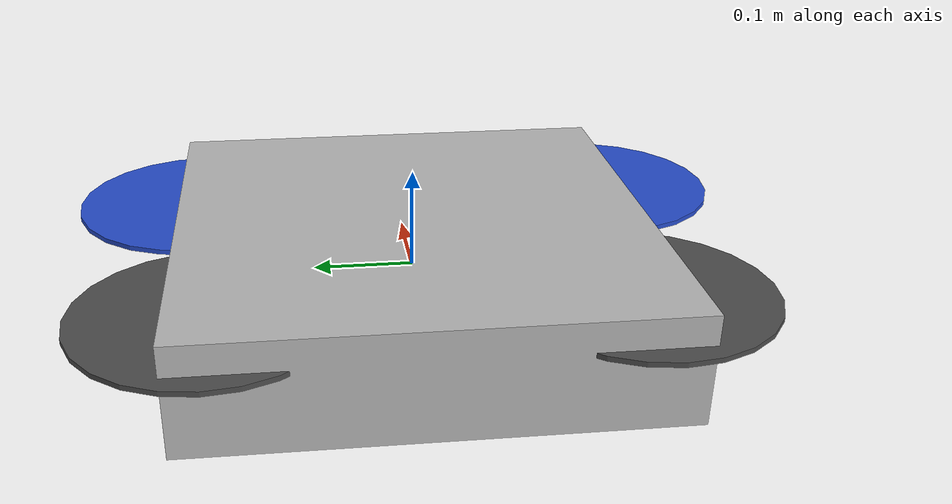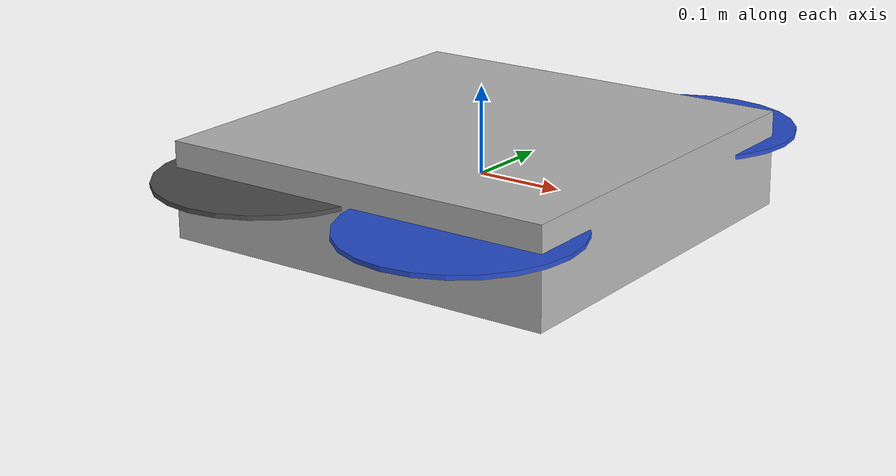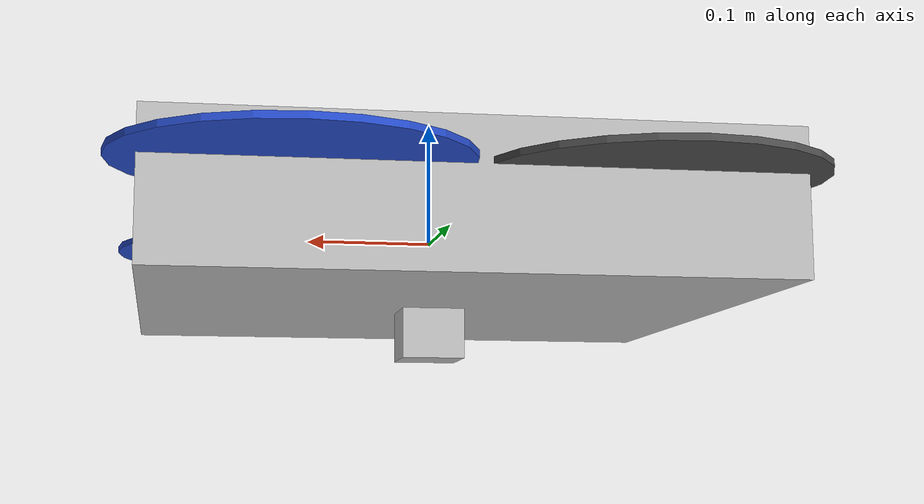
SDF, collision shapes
<?xml version='1.0'?>
<sdf version='1.5'>
  <model name='iris_stereo'>

    <include>
      <uri>model://iris</uri>
    </include>

    <include>
      <uri>model://stereo_cam</uri>
      <pose>0 0 0 0 0 0</pose>
    </include>

    <joint name="stereo_cam_joint" type="fixed">
      <child>stereo_cam::link</child>
      <parent>iris::base_link</parent>
      <axis>
        <xyz>0 0 1</xyz>
        <limit>
          <upper>0</upper>
          <lower>0</lower>
        </limit>
      </axis>
    </joint>

  </model>
</sdf>

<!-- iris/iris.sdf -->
<sdf version='1.6'>
  <model name='iris'>
    <link name='base_link'>
      <pose frame=''>0 0 0 0 -0 0</pose>
      <inertial>
        <pose frame=''>0 0 -0 0 -0 0</pose>
        <mass>1.50001</mass>
        <inertia>
          <ixx>0.0347573</ixx>
          <ixy>0</ixy>
          <ixz>0</ixz>
          <iyy>0.0458939</iyy>
          <iyz>0</iyz>
          <izz>0.097701</izz>
        </inertia>
      </inertial>
      <collision name='base_link_fixed_joint_lump__/camera_red_iris_link_collision'>
        <pose frame=''>0 0 -0.07 3.14159 1.57079 3.14159</pose>
        <geometry>
          <box>
            <size>0.05 0.05 0.05</size>
          </box>
        </geometry>
        <surface>
          <contact>
            <ode/>
          </contact>
          <friction>
            <ode/>
          </friction>
        </surface>
      </collision>
      <collision name='base_link_inertia_collision_1'>
        <pose frame=''>0 0 0 0 -0 0</pose>
        <geometry>
          <box>
            <size>0.47 0.47 0.11</size>
          </box>
        </geometry>
        <surface>
          <contact>
            <ode>
              <min_depth>0.001</min_depth>
              <max_vel>0</max_vel>
            </ode>
          </contact>
          <friction>
            <ode/>
          </friction>
        </surface>
      </collision>
      <visual name='base_link_fixed_joint_lump__/camera_red_iris_link_visual'>
        <pose frame=''>0 0 -0.07 3.14159 6e-06 3.14159</pose>
        <geometry>
          <box>
            <size>0.05 0.05 0.05</size>
          </box>
        </geometry>
        <material>
          <script>
            <uri>__default__</uri>
            <name>__default__</name>
          </script>
        </material>
      </visual>
      <visual name='base_link_inertia_visual_1'>
        <pose frame=''>0 0 0 0 -0 0</pose>
        <geometry>
          <mesh>
            <scale>1 1 1</scale>
            <uri>model://rotors_description/meshes/iris.stl</uri>
          </mesh>
        </geometry>
        <material>
          <script>
            <name>Gazebo/DarkGrey</name>
            <uri>file://media/materials/scripts/gazebo.material</uri>
          </script>
        </material>
      </visual>
      <velocity_decay/>
      <gravity>1</gravity>
      <velocity_decay/>
      <sensor name='_camera_red_iris' type='camera'>
        <update_rate>30</update_rate>
        <camera name='head'>
          <horizontal_fov>1.39626</horizontal_fov>
          <image>
            <width>800</width>
            <height>800</height>
            <format>R8G8B8</format>
          </image>
          <clip>
            <near>0.02</near>
            <far>300</far>
          </clip>
          <noise>
            <type>gaussian</type>
            <mean>0</mean>
            <stddev>0.007</stddev>
          </noise>
        </camera>
        <plugin name='_camera_red_iris_controller' filename='libgazebo_ros_camera.so'>
          <robotNamespace/>
          <alwaysOn>1</alwaysOn>
          <updateRate>30.0</updateRate>
          <cameraName>camera_red_iris</cameraName>
          <imageTopicName>image_raw</imageTopicName>
          <cameraInfoTopicName>camera_info</cameraInfoTopicName>
          <frameName>camera_red_iris_link</frameName>
          <hackBaseline>0.0</hackBaseline>
          <distortionK1>0.0</distortionK1>
          <distortionK2>0.0</distortionK2>
          <distortionK3>0.0</distortionK3>
          <distortionT1>0.0</distortionT1>
          <distortionT2>0.0</distortionT2>
        </plugin>
        <pose frame=''>0 0 -0.07 3.14159 1.57079 3.14159</pose>
      </sensor>
    </link>
    <link name='/imu_link'>
      <pose frame=''>0 0 0 0 -0 0</pose>
      <inertial>
        <pose frame=''>0 0 0 0 -0 0</pose>
        <mass>0.015</mass>
        <inertia>
          <ixx>1e-05</ixx>
          <ixy>0</ixy>
          <ixz>0</ixz>
          <iyy>1e-05</iyy>
          <iyz>0</iyz>
          <izz>1e-05</izz>
        </inertia>
      </inertial>
    </link>
    <joint name='/imu_joint' type='revolute'>
      <child>/imu_link</child>
      <parent>base_link</parent>
      <axis>
        <xyz>1 0 0</xyz>
        <limit>
          <lower>0</lower>
          <upper>0</upper>
          <effort>0</effort>
          <velocity>0</velocity>
        </limit>
        <dynamics>
          <spring_reference>0</spring_reference>
          <spring_stiffness>0</spring_stiffness>
        </dynamics>
        <use_parent_model_frame>1</use_parent_model_frame>
      </axis>
    </joint>
    <link name='rotor_0'>
      <pose frame=''>0.13 -0.22 0.023 0 -0 0</pose>
      <inertial>
        <pose frame=''>0 0 0 0 -0 0</pose>
        <mass>0.005</mass>
        <inertia>
          <ixx>9.75e-07</ixx>
          <ixy>0</ixy>
          <ixz>0</ixz>
          <iyy>0.000273104</iyy>
          <iyz>0</iyz>
          <izz>0.000274004</izz>
        </inertia>
      </inertial>
      <collision name='rotor_0_collision'>
        <pose frame=''>0 0 0 0 -0 0</pose>
        <geometry>
          <cylinder>
            <length>0.005</length>
            <radius>0.128</radius>
          </cylinder>
        </geometry>
        <surface>
          <contact>
            <ode/>
          </contact>
          <friction>
            <ode/>
          </friction>
        </surface>
      </collision>
      <visual name='rotor_0_visual'>
        <pose frame=''>0 0 0 0 -0 0</pose>
        <geometry>
          <mesh>
            <scale>1 1 1</scale>
            <uri>model://rotors_description/meshes/iris_prop_ccw.dae</uri>
          </mesh>
        </geometry>
        <material>
          <script>
            <name>Gazebo/Blue</name>
            <uri>file://media/materials/scripts/gazebo.material</uri>
          </script>
        </material>
      </visual>
      <gravity>1</gravity>
      <velocity_decay/>
    </link>
    <joint name='rotor_0_joint' type='revolute'>
      <child>rotor_0</child>
      <parent>base_link</parent>
      <axis>
        <xyz>0 0 1</xyz>
        <limit>
          <lower>-1e+16</lower>
          <upper>1e+16</upper>
        </limit>
        <dynamics>
          <spring_reference>0</spring_reference>
          <spring_stiffness>0</spring_stiffness>
        </dynamics>
        <use_parent_model_frame>1</use_parent_model_frame>
      </axis>
    </joint>
    <link name='rotor_1'>
      <pose frame=''>-0.13 0.2 0.023 0 -0 0</pose>
      <inertial>
        <pose frame=''>0 0 0 0 -0 0</pose>
        <mass>0.005</mass>
        <inertia>
          <ixx>9.75e-07</ixx>
          <ixy>0</ixy>
          <ixz>0</ixz>
          <iyy>0.000273104</iyy>
          <iyz>0</iyz>
          <izz>0.000274004</izz>
        </inertia>
      </inertial>
      <collision name='rotor_1_collision'>
        <pose frame=''>0 0 0 0 -0 0</pose>
        <geometry>
          <cylinder>
            <length>0.005</length>
            <radius>0.128</radius>
          </cylinder>
        </geometry>
        <surface>
          <contact>
            <ode/>
          </contact>
          <friction>
            <ode/>
          </friction>
        </surface>
      </collision>
      <visual name='rotor_1_visual'>
        <pose frame=''>0 0 0 0 -0 0</pose>
        <geometry>
          <mesh>
            <scale>1 1 1</scale>
            <uri>model://rotors_description/meshes/iris_prop_ccw.dae</uri>
          </mesh>
        </geometry>
        <material>
          <script>
            <name>Gazebo/DarkGrey</name>
            <uri>file://media/materials/scripts/gazebo.material</uri>
          </script>
        </material>
      </visual>
      <gravity>1</gravity>
      <velocity_decay/>
    </link>
    <joint name='rotor_1_joint' type='revolute'>
      <child>rotor_1</child>
      <parent>base_link</parent>
      <axis>
        <xyz>0 0 1</xyz>
        <limit>
          <lower>-1e+16</lower>
          <upper>1e+16</upper>
        </limit>
        <dynamics>
          <spring_reference>0</spring_reference>
          <spring_stiffness>0</spring_stiffness>
        </dynamics>
        <use_parent_model_frame>1</use_parent_model_frame>
      </axis>
    </joint>
    <link name='rotor_2'>
      <pose frame=''>0.13 0.22 0.023 0 -0 0</pose>
      <inertial>
        <pose frame=''>0 0 0 0 -0 0</pose>
        <mass>0.005</mass>
        <inertia>
          <ixx>9.75e-07</ixx>
          <ixy>0</ixy>
          <ixz>0</ixz>
          <iyy>0.000273104</iyy>
          <iyz>0</iyz>
          <izz>0.000274004</izz>
        </inertia>
      </inertial>
      <collision name='rotor_2_collision'>
        <pose frame=''>0 0 0 0 -0 0</pose>
        <geometry>
          <cylinder>
            <length>0.005</length>
            <radius>0.128</radius>
          </cylinder>
        </geometry>
        <surface>
          <contact>
            <ode/>
          </contact>
          <friction>
            <ode/>
          </friction>
        </surface>
      </collision>
      <visual name='rotor_2_visual'>
        <pose frame=''>0 0 0 0 -0 0</pose>
        <geometry>
          <mesh>
            <scale>1 1 1</scale>
            <uri>model://rotors_description/meshes/iris_prop_cw.dae</uri>
          </mesh>
        </geometry>
        <material>
          <script>
            <name>Gazebo/Blue</name>
            <uri>file://media/materials/scripts/gazebo.material</uri>
          </script>
        </material>
      </visual>
      <gravity>1</gravity>
      <velocity_decay/>
    </link>
    <joint name='rotor_2_joint' type='revolute'>
      <child>rotor_2</child>
      <parent>base_link</parent>
      <axis>
        <xyz>0 0 1</xyz>
        <limit>
          <lower>-1e+16</lower>
          <upper>1e+16</upper>
        </limit>
        <dynamics>
          <spring_reference>0</spring_reference>
          <spring_stiffness>0</spring_stiffness>
        </dynamics>
        <use_parent_model_frame>1</use_parent_model_frame>
      </axis>
    </joint>
    <link name='rotor_3'>
      <pose frame=''>-0.13 -0.2 0.023 0 -0 0</pose>
      <inertial>
        <pose frame=''>0 0 0 0 -0 0</pose>
        <mass>0.005</mass>
        <inertia>
          <ixx>9.75e-07</ixx>
          <ixy>0</ixy>
          <ixz>0</ixz>
          <iyy>0.000273104</iyy>
          <iyz>0</iyz>
          <izz>0.000274004</izz>
        </inertia>
      </inertial>
      <collision name='rotor_3_collision'>
        <pose frame=''>0 0 0 0 -0 0</pose>
        <geometry>
          <cylinder>
            <length>0.005</length>
            <radius>0.128</radius>
          </cylinder>
        </geometry>
        <surface>
          <contact>
            <ode/>
          </contact>
          <friction>
            <ode/>
          </friction>
        </surface>
      </collision>
      <visual name='rotor_3_visual'>
        <pose frame=''>0 0 0 0 -0 0</pose>
        <geometry>
          <mesh>
            <scale>1 1 1</scale>
            <uri>model://rotors_description/meshes/iris_prop_cw.dae</uri>
          </mesh>
        </geometry>
        <material>
          <script>
            <name>Gazebo/DarkGrey</name>
            <uri>file://media/materials/scripts/gazebo.material</uri>
          </script>
        </material>
      </visual>
      <gravity>1</gravity>
      <velocity_decay/>
    </link>
    <joint name='rotor_3_joint' type='revolute'>
      <child>rotor_3</child>
      <parent>base_link</parent>
      <axis>
        <xyz>0 0 1</xyz>
        <limit>
          <lower>-1e+16</lower>
          <upper>1e+16</upper>
        </limit>
        <dynamics>
          <spring_reference>0</spring_reference>
          <spring_stiffness>0</spring_stiffness>
        </dynamics>
        <use_parent_model_frame>1</use_parent_model_frame>
      </axis>
    </joint>
    <plugin name='rosbag' filename='libgazebo_multirotor_base_plugin.so'>
      <robotNamespace/>
      <linkName>base_link</linkName>
      <rotorVelocitySlowdownSim>10</rotorVelocitySlowdownSim>
    </plugin>
    <plugin name='front_right_motor_model' filename='libgazebo_motor_model.so'>
      <robotNamespace/>
      <jointName>rotor_0_joint</jointName>
      <linkName>rotor_0</linkName>
      <turningDirection>ccw</turningDirection>
      <timeConstantUp>0.0125</timeConstantUp>
      <timeConstantDown>0.025</timeConstantDown>
      <maxRotVelocity>1100</maxRotVelocity>
      <motorConstant>8.54858e-06</motorConstant>
      <momentConstant>0.06</momentConstant>
      <commandSubTopic>/gazebo/command/motor_speed</commandSubTopic>
      <motorNumber>0</motorNumber>
      <rotorDragCoefficient>0.000806428</rotorDragCoefficient>
      <rollingMomentCoefficient>1e-06</rollingMomentCoefficient>
      <motorSpeedPubTopic>/motor_speed/0</motorSpeedPubTopic>
      <rotorVelocitySlowdownSim>10</rotorVelocitySlowdownSim>
    </plugin>
    <plugin name='back_left_motor_model' filename='libgazebo_motor_model.so'>
      <robotNamespace/>
      <jointName>rotor_1_joint</jointName>
      <linkName>rotor_1</linkName>
      <turningDirection>ccw</turningDirection>
      <timeConstantUp>0.0125</timeConstantUp>
      <timeConstantDown>0.025</timeConstantDown>
      <maxRotVelocity>1100</maxRotVelocity>
      <motorConstant>8.54858e-06</motorConstant>
      <momentConstant>0.06</momentConstant>
      <commandSubTopic>/gazebo/command/motor_speed</commandSubTopic>
      <motorNumber>1</motorNumber>
      <rotorDragCoefficient>0.000806428</rotorDragCoefficient>
      <rollingMomentCoefficient>1e-06</rollingMomentCoefficient>
      <motorSpeedPubTopic>/motor_speed/1</motorSpeedPubTopic>
      <rotorVelocitySlowdownSim>10</rotorVelocitySlowdownSim>
    </plugin>
    <plugin name='front_left_motor_model' filename='libgazebo_motor_model.so'>
      <robotNamespace/>
      <jointName>rotor_2_joint</jointName>
      <linkName>rotor_2</linkName>
      <turningDirection>cw</turningDirection>
      <timeConstantUp>0.0125</timeConstantUp>
      <timeConstantDown>0.025</timeConstantDown>
      <maxRotVelocity>1100</maxRotVelocity>
      <motorConstant>8.54858e-06</motorConstant>
      <momentConstant>0.06</momentConstant>
      <commandSubTopic>/gazebo/command/motor_speed</commandSubTopic>
      <motorNumber>2</motorNumber>
      <rotorDragCoefficient>0.000806428</rotorDragCoefficient>
      <rollingMomentCoefficient>1e-06</rollingMomentCoefficient>
      <motorSpeedPubTopic>/motor_speed/2</motorSpeedPubTopic>
      <rotorVelocitySlowdownSim>10</rotorVelocitySlowdownSim>
    </plugin>
    <plugin name='back_right_motor_model' filename='libgazebo_motor_model.so'>
      <robotNamespace/>
      <jointName>rotor_3_joint</jointName>
      <linkName>rotor_3</linkName>
      <turningDirection>cw</turningDirection>
      <timeConstantUp>0.0125</timeConstantUp>
      <timeConstantDown>0.025</timeConstantDown>
      <maxRotVelocity>1100</maxRotVelocity>
      <motorConstant>8.54858e-06</motorConstant>
      <momentConstant>0.06</momentConstant>
      <commandSubTopic>/gazebo/command/motor_speed</commandSubTopic>
      <motorNumber>3</motorNumber>
      <rotorDragCoefficient>0.000806428</rotorDragCoefficient>
      <rollingMomentCoefficient>1e-06</rollingMomentCoefficient>
      <motorSpeedPubTopic>/motor_speed/3</motorSpeedPubTopic>
      <rotorVelocitySlowdownSim>10</rotorVelocitySlowdownSim>
    </plugin>
    <plugin name='gps_plugin' filename='libgazebo_gps_plugin.so'>
      <robotNamespace/>
      <gpsNoise>1</gpsNoise>
    </plugin>
    <plugin name='mavlink_interface' filename='libgazebo_mavlink_interface.so'>
      <robotNamespace/>
      <imuSubTopic>/imu</imuSubTopic>
      <gpsSubTopic>/gps</gpsSubTopic>
      <mavlink_addr>INADDR_ANY</mavlink_addr>
      <mavlink_udp_port>14560</mavlink_udp_port>
      <serialEnabled>0</serialEnabled>
      <serialDevice>/dev/ttyACM0</serialDevice>
      <baudRate>921600</baudRate>
      <qgc_addr>INADDR_ANY</qgc_addr>
      <qgc_udp_port>14550</qgc_udp_port>
      <hil_mode>0</hil_mode>
      <hil_state_level>0</hil_state_level>
      <vehicle_is_tailsitter>0</vehicle_is_tailsitter>
      <send_odometry>0</send_odometry>
      <motorSpeedCommandPubTopic>/gazebo/command/motor_speed</motorSpeedCommandPubTopic>
      <control_channels>
        <channel name='rotor1'>
          <input_index>0</input_index>
          <input_offset>0</input_offset>
          <input_scaling>1000</input_scaling>
          <zero_position_disarmed>0</zero_position_disarmed>
          <zero_position_armed>100</zero_position_armed>
          <joint_control_type>velocity</joint_control_type>
        </channel>
        <channel name='rotor2'>
          <input_index>1</input_index>
          <input_offset>0</input_offset>
          <input_scaling>1000</input_scaling>
          <zero_position_disarmed>0</zero_position_disarmed>
          <zero_position_armed>100</zero_position_armed>
          <joint_control_type>velocity</joint_control_type>
        </channel>
        <channel name='rotor3'>
          <input_index>2</input_index>
          <input_offset>0</input_offset>
          <input_scaling>1000</input_scaling>
          <zero_position_disarmed>0</zero_position_disarmed>
          <zero_position_armed>100</zero_position_armed>
          <joint_control_type>velocity</joint_control_type>
        </channel>
        <channel name='rotor4'>
          <input_index>3</input_index>
          <input_offset>0</input_offset>
          <input_scaling>1000</input_scaling>
          <zero_position_disarmed>0</zero_position_disarmed>
          <zero_position_armed>100</zero_position_armed>
          <joint_control_type>velocity</joint_control_type>
        </channel>
        <channel name='rotor5'>
          <input_index>4</input_index>
          <input_offset>1</input_offset>
          <input_scaling>324.6</input_scaling>
          <zero_position_disarmed>0</zero_position_disarmed>
          <zero_position_armed>0</zero_position_armed>
          <joint_control_type>velocity</joint_control_type>
          <joint_control_pid>
            <p>0.1</p>
            <i>0</i>
            <d>0</d>
            <iMax>0.0</iMax>
            <iMin>0.0</iMin>
            <cmdMax>2</cmdMax>
            <cmdMin>-2</cmdMin>
          </joint_control_pid>
          <joint_name>zephyr_delta_wing::propeller_joint</joint_name>
        </channel>
        <channel name='rotor6'>
          <input_index>5</input_index>
          <input_offset>0</input_offset>
          <input_scaling>0.524</input_scaling>
          <zero_position_disarmed>0</zero_position_disarmed>
          <zero_position_armed>0</zero_position_armed>
          <joint_control_type>position</joint_control_type>
          <joint_name>zephyr_delta_wing::flap_left_joint</joint_name>
          <joint_control_pid>
            <p>10.0</p>
            <i>0</i>
            <d>0</d>
            <iMax>0</iMax>
            <iMin>0</iMin>
            <cmdMax>20</cmdMax>
            <cmdMin>-20</cmdMin>
          </joint_control_pid>
        </channel>
        <channel name='rotor7'>
          <input_index>6</input_index>
          <input_offset>0</input_offset>
          <input_scaling>0.524</input_scaling>
          <zero_position_disarmed>0</zero_position_disarmed>
          <zero_position_armed>0</zero_position_armed>
          <joint_control_type>position</joint_control_type>
          <joint_name>zephyr_delta_wing::flap_right_joint</joint_name>
          <joint_control_pid>
            <p>10.0</p>
            <i>0</i>
            <d>0</d>
            <iMax>0</iMax>
            <iMin>0</iMin>
            <cmdMax>20</cmdMax>
            <cmdMin>-20</cmdMin>
          </joint_control_pid>
        </channel>
        <channel name='rotor8'>
          <input_index>7</input_index>
          <input_offset>0</input_offset>
          <input_scaling>0.524</input_scaling>
          <zero_position_disarmed>0</zero_position_disarmed>
          <zero_position_armed>0</zero_position_armed>
          <joint_control_type>position</joint_control_type>
        </channel>
      </control_channels>
    </plugin>
    <static>0</static>
    <plugin name='rotors_gazebo_imu_plugin' filename='libgazebo_imu_plugin.so'>
      <robotNamespace/>
      <linkName>/imu_link</linkName>
      <imuTopic>/imu</imuTopic>
      <gyroscopeNoiseDensity>0.0003394</gyroscopeNoiseDensity>
      <gyroscopeRandomWalk>3.8785e-05</gyroscopeRandomWalk>
      <gyroscopeBiasCorrelationTime>1000.0</gyroscopeBiasCorrelationTime>
      <gyroscopeTurnOnBiasSigma>0.0087</gyroscopeTurnOnBiasSigma>
      <accelerometerNoiseDensity>0.004</accelerometerNoiseDensity>
      <accelerometerRandomWalk>0.006</accelerometerRandomWalk>
      <accelerometerBiasCorrelationTime>300.0</accelerometerBiasCorrelationTime>
      <accelerometerTurnOnBiasSigma>0.196</accelerometerTurnOnBiasSigma>
    </plugin>
  </model>
</sdf>

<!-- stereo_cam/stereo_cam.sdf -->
<sdf version='1.6'>
    <model name='stereo_cam'>
    <pose>-0.158979 -0.04405 0.045074 0 -0 0</pose>
      <link name='link'>
        <inertial>
          <mass>0.015</mass>
          <inertia>
            <ixx>4.15e-6</ixx>
          <ixy>0</ixy>
          <ixz>0</ixz>
          <iyy>2.407e-6</iyy>
          <iyz>0</iyz>
          <izz>2.407e-6</izz>
          </inertia>
        </inertial>
        <collision name='collision'>
          <geometry>
            <box>
              <size>0.01 0.01 0.01</size>
            </box>
          </geometry>
          <max_contacts>10</max_contacts>
          <surface>
            <contact>
              <ode/>
            </contact>
            <bounce/>
            <friction>
              <ode/>
            </friction>
          </surface>
        </collision>
        <visual name='visual'>
          <geometry>
            <box>
              <size>0.01 0.01 0.01</size>
            </box>
          </geometry>
        </visual>

    <sensor type="multicamera" name="stereo_camera">
      <update_rate>30.0</update_rate>
      <camera name="left">
	<pose>0 0.07 0.1 0 0 0</pose>
        <horizontal_fov>1.3962634</horizontal_fov>
        <image>
          <width>800</width>
          <height>800</height>
          <format>L8</format>
        </image>
        <clip>
          <near>0.02</near>
          <far>300</far>
        </clip>
        <noise>
          <type>gaussian</type>
          <mean>0.0</mean>
          <stddev>0.007</stddev>
        </noise>
      </camera>
      <camera name="right">
        <pose>0 -0.07 0.1 0 0 0</pose>
        <horizontal_fov>1.3962634</horizontal_fov>
        <image>
          <width>800</width>
          <height>800</height>
          <format>L8</format>
        </image>
        <clip>
          <near>0.02</near>
          <far>300</far>
        </clip>
        <noise>
          <type>gaussian</type>
          <mean>0.0</mean>
          <stddev>0.007</stddev>
        </noise>
      </camera>
      <plugin name="stereo_camera_controller" filename="libgazebo_ros_multicamera.so">
        <alwaysOn>true</alwaysOn>
        <updateRate>0.0</updateRate>
        <cameraName>multisense_sl/camera</cameraName>
        <imageTopicName>image_raw</imageTopicName>
        <cameraInfoTopicName>camera_info</cameraInfoTopicName>
        <frameName>left_camera_optical_frame</frameName>
        <hackBaseline>0.07</hackBaseline>
        <distortionK1>0.0</distortionK1>
        <distortionK2>0.0</distortionK2>
        <distortionK3>0.0</distortionK3>
        <distortionT1>0.0</distortionT1>
        <distortionT2>0.0</distortionT2>
      </plugin>
    </sensor>

        <self_collide>0</self_collide>
        <kinematic>0</kinematic>
      </link>
  </model>
</sdf>
